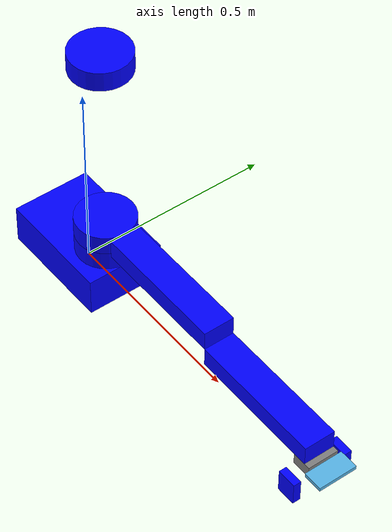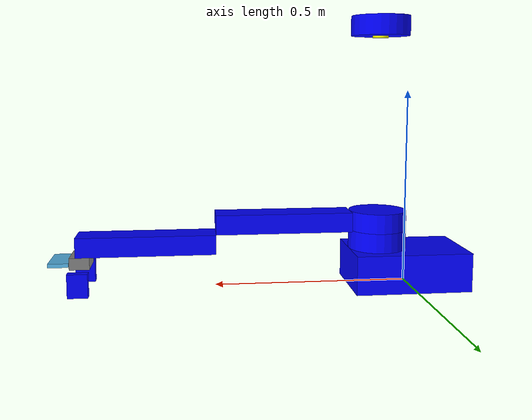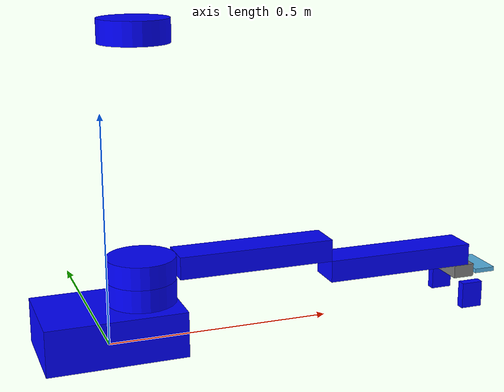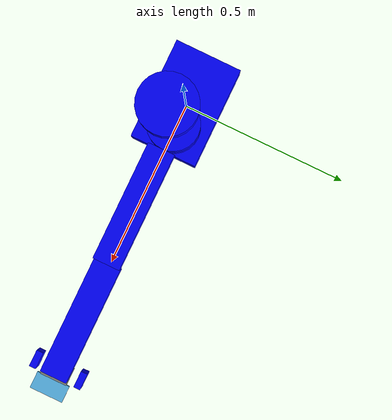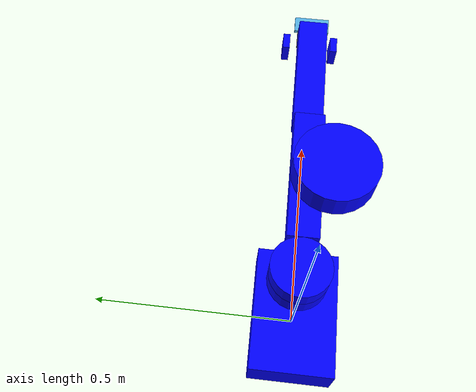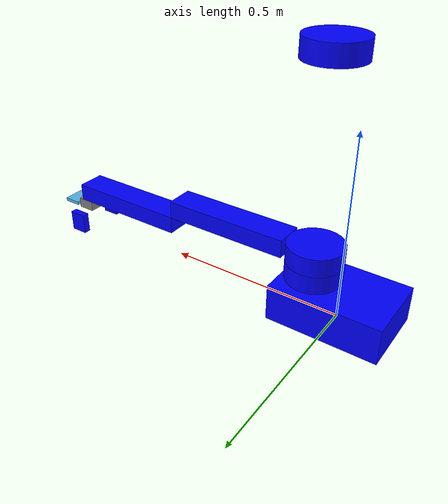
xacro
<?xml version="1.0"?>
<robot name="orion" xmlns:xacro="http://www.ros.org/wiki/xacro">

    <xacro:include filename="common_properties.xacro"/>
    <xacro:include filename="orion_manipulator_scara.xacro"/>
    <xacro:include filename="orion_manipulator_scara_gazebo.xacro"/>
    <xacro:include filename="sensors/camera.xacro"/>
    <xacro:include filename="sensors/imus.xacro"/>

    <xacro:imu_sensor prefix="arm1" parent="arm_1_link" xyz="0 0 0"/>
    <xacro:imu_sensor prefix="arm2" parent="arm_2_link" xyz="0 0 0"/>
    <xacro:imu_sensor prefix="gripper" parent="base_gripper_link" xyz="0 0 0"/>
    <xacro:include filename="sensors/distance_laser.xacro"/>

    <xacro:include filename="world_sensor_plugins.xacro"/>

</robot>

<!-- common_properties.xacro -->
<robot xmlns:xacro="http://www.ros.org/wiki/xacro">

    <material name="red">
        <color rgba="1 0 0 1"/>
    </material>

    <material name="white">
        <color rgba="1 1 1 1"/>
    </material>

    <material name="blue">
        <color rgba="0 0 1 1"/>
    </material>

    <material name="yellow">
        <color rgba="1 1 0 1"/>
    </material>

    <material name="grey">
        <color rgba="0.5 0.5 0.5 1"/>
    </material>

    <xacro:macro name="box_inertia" params="m x y z o_xyz o_rpy">
        <inertial>
            <mass value="${m}"/>
            <origin xyz="${o_xyz}" rpy="${o_rpy}"/>
            <inertia ixx="${(m/12) * (y*y + z*z)}" ixy="0" ixz="0"
                     iyy="${(m/12) * (x*x + z*z)}" iyz="0"
                     izz="${(m/12) * (x*x + y*y)}"/>
        </inertial>
    </xacro:macro>

    <xacro:macro name="cylinder_inertia" params="m r h o_xyz o_rpy">
        <inertial>
            <mass value="${m}"/>
            <origin xyz="${o_xyz}" rpy="${o_rpy}"/>
            <inertia ixx="${(m/12) * (3*r*r + h*h)}" ixy="0" ixz="0"
                     iyy="${(m/12) * (3*r*r + h*h)}" iyz="0"
                     izz="${(m/2) * (r*r)}"/>
        </inertial>
    </xacro:macro>

    <xacro:macro name="sphere_inertia" params="m r o_xyz o_rpy">
        <inertial>
            <mass value="${m}"/>
            <origin xyz="${o_xyz}" rpy="${o_rpy}"/>
            <inertia ixx="${(2.0/5.0) * m*r*r}" ixy="0" ixz="0"
                     iyy="${(2.0/5.0) * m*r*r}" iyz="0"
                     izz="${(2.0/5.0) * m*r*r}"/>
        </inertial>
    </xacro:macro>

</robot>

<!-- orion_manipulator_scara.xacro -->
<robot xmlns:xacro="http://www.ros.org/wiki/xacro">

    <xacro:property name="base_scara_length" value="0.3"/>
    <xacro:property name="base_scara_width" value ="0.2"/>
    <xacro:property name="base_scara_height" value="0.10"/>
    <xacro:property name="scara_support_radius" value="0.075"/>
    <xacro:property name="scara_support_length" value="0.05"/>
    <xacro:property name="arm_length" value="0.35"/>
    <xacro:property name="arm_width" value ="0.08"/>
    <xacro:property name="arm_height" value="0.05"/>
    <xacro:property name="base_gripper_length" value="0.05"/>
    <xacro:property name="base_gripper_width" value ="0.08"/>
    <xacro:property name="base_gripper_height" value="0.03"/>
    <xacro:property name="gripper_length" value="0.05"/>
    <xacro:property name="gripper_width" value ="0.02"/>
    <xacro:property name="gripper_height" value="0.06"/>

    <xacro:property name="base_scara_mass" value="3.0"/>
    <xacro:property name="scara_support_mass" value="10.0"/>
    <xacro:property name="arm_mass" value="1.0"/>
    <xacro:property name="base_gripper_mass" value="0.2"/>
    <xacro:property name="gripper_mass" value="0.1"/>

    <xacro:macro name="support_link" params="prefix z">
        <link name="${prefix}_scara_link">
            <visual>
                <geometry>
                    <cylinder radius="${scara_support_radius}" length="${scara_support_length}"/>
                </geometry>
                <origin xyz="0 0 ${z}" rpy="0 0 0"/>
                <material name="blue"/>
            </visual>
            <collision>
                <geometry>
                    <cylinder radius="${scara_support_radius}" length="${scara_support_length}"/>
                </geometry>
                <origin xyz="0 0 ${z}" rpy="0 0 0"/>
            </collision>
            <xacro:cylinder_inertia m="${scara_support_mass}" r="${scara_support_radius}" h="${scara_support_length}"
                                    o_xyz="0 0 ${z}" o_rpy="0 0 0"/>
        </link>
    </xacro:macro>

    <xacro:macro name="arm_link" params="prefix">
        <link name="arm_${prefix}_link">
            <visual>
                <geometry>
                    <box size="${arm_length} ${arm_width} ${arm_height}"/>
                </geometry>
                <origin xyz="0.175 0 0" rpy="0 0 0"/>
                <material name="blue"/>
            </visual>
            <collision>
                <geometry>
                    <box size="${arm_length} ${arm_width} ${arm_height}"/>
                </geometry>
                <origin xyz="0.175 0 0" rpy="0 0 0"/>
            </collision>
            <xacro:box_inertia m="${arm_mass}" x="${arm_length}" y="${arm_width}" z="${arm_height}"
                           o_xyz="0.175 0 0" o_rpy="0 0 0"/>
        </link>
    </xacro:macro>

    <xacro:macro name="gripper_link" params="prefix">
        <link name="${prefix}_gripper_link">
            <visual>
                <geometry>
                    <box size="${gripper_length} ${gripper_width} ${gripper_height}"/>
                </geometry>
                <origin xyz="0 0 0" rpy="0 0 0"/>
                <material name="blue"/>
            </visual>
            <collision>
                <geometry>
                    <box size="${gripper_length} ${gripper_width} ${gripper_height}"/>
                </geometry>
                <origin xyz="0 0 0" rpy="0 0 0"/>
            </collision>
            <xacro:box_inertia m="${gripper_mass}" x="${gripper_length}" y="${gripper_width}" z="${gripper_height}"
                           o_xyz="0 0 0" o_rpy="0 0 0"/>
        </link>
    </xacro:macro>

    <link name="base_scara_link">
        <visual>
            <geometry>
                <box size="${base_scara_length} ${base_scara_width} ${base_scara_height}"/>
            </geometry>
            <origin xyz="0 0 0.04" rpy="0 0 0"/>
            <material name="blue"/>
        </visual>
        <collision>
                <geometry>
                    <box size="${base_scara_length} ${base_scara_width} ${base_scara_height}"/>
                </geometry>
                <origin xyz="0 0 0.04" rpy="0 0 0"/>
            </collision>
            <xacro:box_inertia m="${base_scara_mass}" x="${base_scara_length}" y="${base_scara_width}" z="${base_scara_height}"
                           o_xyz="0 0 0.04" o_rpy="0 0 0"/>
    </link>

    <xacro:support_link prefix="first_support" z="0.025"/>
    <xacro:support_link prefix="second_support" z="0.025"/>
    <xacro:support_link prefix="movable" z="0"/>

    <xacro:arm_link prefix="1"/>
    <xacro:arm_link prefix="2"/>

    <link name="base_gripper_link">
        <visual>
            <geometry>
                <box size="${base_gripper_length} ${base_gripper_width} ${base_gripper_height}"/>
            </geometry>
            <origin xyz="0 0 0" rpy="0 0 0"/>
            <material name="grey"/>
        </visual>
        <collision>
                <geometry>
                    <box size="${base_gripper_length} ${base_gripper_width} ${base_gripper_height}"/>
                </geometry>
                <origin xyz="0 0 0" rpy="0 0 0"/>
            </collision>
            <xacro:box_inertia m="${base_gripper_mass}" x="${base_gripper_length}" y="${base_gripper_width}" z="${base_gripper_height}"
                           o_xyz="0 0 0" o_rpy="0 0 0"/>
    </link>

    <xacro:gripper_link prefix="left"/>
    <xacro:gripper_link prefix="right"/>

------------------------------------------------------------

    <joint name="scara_base_first_support_joint" type="revolute">
        <parent link="base_scara_link"/>
        <child link="first_support_scara_link"/>
        <origin xyz="0.075 0 0.09" rpy="0 0 0"/>
        <axis xyz="0 0 1"/>

        <limit lower="-3.14" upper="3.14" effort="500.0" velocity="1.0"/>
        <dynamics friction="20" damping="5" />

    </joint>

    <joint name="support_scara_joint" type="fixed">
        <parent link="first_support_scara_link"/>
        <child link="second_support_scara_link"/>
        <origin xyz="0 0 0.55" rpy="0 0 0"/>
    </joint>

    <joint name="first_support_movable_scara_joint" type="prismatic">
        <parent link="first_support_scara_link"/>
        <child link="movable_scara_link"/>
        <origin xyz="0 0 0.075" rpy="0 0 0"/>
        <axis xyz="0 0 1"/>
        <limit lower="0" upper="0.45" effort="1000.0" velocity="0.5"/>
        <dynamics friction="50" damping="30"/>
    </joint>

    <joint name="movable_scara_arm_1_joint" type="fixed">
        <parent link="movable_scara_link"/>
        <child link="arm_1_link"/>
        <origin xyz="0.075 0 0" rpy="0 0 0"/>
    </joint>

    <joint name="arm_joint" type="revolute">
        <parent link="arm_1_link"/>
        <child link="arm_2_link"/>
        <origin xyz="0.35 0 -0.05" rpy="0 0 0"/>
        <axis xyz="0 0 1"/>
        <limit lower="-3.14" upper="3.14" effort="500.0" velocity="3.0"/>
        <dynamics friction="15" damping="5" />
    </joint>

    <joint name="arm2_base_gripper_joint" type="revolute">
        <parent link="arm_2_link"/>
        <child link="base_gripper_link"/>
        <origin xyz="0.34 0 -0.040" rpy="0 0 0"/>
        <axis xyz="0 0 1"/>
        <limit lower="-3.14" upper="3.14" effort="80.0" velocity="1.0"/>
        <dynamics friction="5" damping="0.5" />
    </joint>

    <joint name="base_right_gripper_joint" type="prismatic">
        <parent link="base_gripper_link"/>
        <child link="right_gripper_link"/>
        <origin xyz="0 -0.07 -0.045" rpy="0 0 0"/>
        <axis xyz="0 1 0"/>
        <limit lower="0" upper="0.04" effort="100.0" velocity="1.0"/>
        <dynamics friction="2.5" damping="0.8"/>
    </joint>

    <joint name="base_left_gripper_joint" type="prismatic">
        <parent link="base_gripper_link"/>
        <child link="left_gripper_link"/>
        <origin xyz="0 0.07 -0.045" rpy="0 0 0"/>
        <axis xyz="0 1 0"/>
        <limit lower="-0.04" upper="0" effort="100.0" velocity="1.0"/>
        <dynamics friction="2.5" damping="0.8"/>
    </joint>

</robot>

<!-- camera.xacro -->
<robot xmlns:xacro="http://www.ros.org/wiki/xacro">

    <xacro:property name="camera_length" value="0.01"/>
    <xacro:property name="camera_width" value="0.1"/>
    <xacro:property name="camera_height" value="0.05"/>

    <xacro:macro name="camera_module" params="
        parent
        name:=camera
        length:=0.02
        width:=0.04
        height:=0.04
        mass:=0.1
        origin_xyz:='0.1 0 0'
        origin_rpy:='0 ${pi/2} 0'
        hfov:=1.3962634
        img_width:=640
        img_height:=480
        clip_near:=0.1
        clip_far:=15
        noise_stddev:=0.007
        update_rate:=20
        topic:=camera/image_raw
        info_topic:=camera/camera_info
    ">

        <link name="${name}_link">
            <visual>
                <geometry>
                    <box size="${length} ${width} ${height}"/>
                </geometry>
            </visual>
            <collision>
                <geometry>
                    <box size="${length} ${width} ${height}"/>
                </geometry>
            </collision>
            <xacro:box_inertia m="${mass}" x="${length}" y="${width}" z="${height}"
                               o_xyz="0 0 0" o_rpy="0 0 0"/>
        </link>

        <joint name="${parent}_${name}_joint" type="fixed">
            <parent link="${parent}_link"/>
            <child link="${name}_link"/>
            <origin xyz="${origin_xyz}" rpy="${origin_rpy}"/>
        </joint>

        <link name="${name}_link_optical"/>

        <joint name="${name}_optical_joint" type="fixed">
            <parent link="${name}_link"/>
            <child link="${name}_link_optical"/>
            <origin xyz="0 0 0" rpy="${-pi/2} 0 ${-pi/2}"/>
        </joint>

        <gazebo reference="${name}_link">
            <sensor name="${name}_sensor" type="camera">
                <camera>
                    <horizontal_fov>${hfov}</horizontal_fov>
                    <image>
                        <width>${img_width}</width>
                        <height>${img_height}</height>
                        <format>R8G8B8</format>
                    </image>
                    <clip>
                        <near>${clip_near}</near>
                        <far>${clip_far}</far>
                    </clip>
                    <noise>
                        <type>gaussian</type>
                        <mean>0.0</mean>
                        <stddev>${noise_stddev}</stddev>
                    </noise>
                    <distortion>
                        <k1>0.0</k1>
                        <k2>0.0</k2>
                        <k3>0.0</k3>
                        <p1>0.0</p1>
                        <p2>0.0</p2>
                        <center>0.0 0.0</center>
                    </distortion>
                    <optical_frame_id>${name}_link_optical</optical_frame_id>
                    <camera_info_topic>${info_topic}</camera_info_topic>
                </camera>
                <always_on>1</always_on>
                <update_rate>${update_rate}</update_rate>
                <visualize>true</visualize>
                <topic>${topic}</topic>
            </sensor>
        </gazebo>

    </xacro:macro>

    <xacro:camera_module parent="base_gripper"
                     length="0.01"
                     width="0.1"
                     height="0.05"
                     origin_xyz="${(base_gripper_length+0.05)/2.0} 0 0"
                     origin_rpy="0 ${pi/2} 0"/>

</robot>

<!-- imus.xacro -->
<robot xmlns:xacro="http://www.ros.org/wiki/xacro">

    <xacro:macro name="imu_sensor" params="prefix parent xyz">
        <link name="imu_${prefix}_link"/>
        <joint name="${prefix}_imu_joint" type="fixed">
            <parent link="${parent}"/>
            <child link="imu_${prefix}_link"/>
            <origin xyz="${xyz}" rpy="0 0 0"/>
        </joint>
        <gazebo reference="imu_${prefix}_link">
            <sensor name="imu_sensor" type="imu">
                <always_on>1</always_on>
                <update_rate>100</update_rate>
                <visualize>true</visualize>
                <topic>imu/${prefix}</topic>
                <imu>
                    <angular_velocity>
                        <x><noise type="gaussian"><mean>0.0</mean><stddev>2e-4</stddev></noise></x>
                        <y><noise type="gaussian"><mean>0.0</mean><stddev>2e-4</stddev></noise></y>
                        <z><noise type="gaussian"><mean>0.0</mean><stddev>2e-4</stddev></noise></z>
                    </angular_velocity>
                    <linear_acceleration>
                        <x><noise type="gaussian"><mean>0.0</mean><stddev>1.7e-2</stddev></noise></x>
                        <y><noise type="gaussian"><mean>0.0</mean><stddev>1.7e-2</stddev></noise></y>
                        <z><noise type="gaussian"><mean>0.0</mean><stddev>1.7e-2</stddev></noise></z>
                    </linear_acceleration>
                </imu>
            </sensor>
        </gazebo>
    </xacro:macro>

    <gazebo>
        <plugin filename="gz-sim-imu-system"
                name="gz::sim::systems::Imu"/>
    </gazebo>

</robot>

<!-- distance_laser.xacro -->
<robot xmlns:xacro="http://www.ros.org/wiki/xacro">

    <xacro:macro name="lidar_module" params="
        parent
        name:=distance_sensor
        radius:=0.02
        length:=0.01
        mass:=0.01
        origin_xyz:='0 0 0'
        origin_rpy:='0 0 0'
        samples:=360
        resolution:=1
        min_angle:=0
        max_angle:=0
        range_min:=0.001
        range_max:=1.0
        range_resolution:=0.01
        noise_stddev:=0.01
        update_rate:=10
        topic:=distance_scan
    ">

        <link name="${name}_frame">
            <visual>
                <geometry>
                    <cylinder radius="${radius}" length="${length}"/>
                </geometry>
                <material name="yellow"/>
                <origin xyz="0 0 0" rpy="0 ${pi/2} 0"/>
            </visual>
            <collision>
                <geometry>
                    <cylinder radius="${radius}" length="${length}"/>
                </geometry>
                <origin xyz="0 0 0" rpy="0 ${pi/2} 0"/>
            </collision>
            <xacro:cylinder_inertia m="${mass}" r="${radius}" h="${length}"
                                    o_xyz="0 0 0" o_rpy="0 0 0"/>
        </link>

        <joint name="${name}_support" type="fixed">
            <parent link="${parent}"/>
            <child link="${name}_frame"/>
            <origin xyz="${origin_xyz}" rpy="${origin_rpy}"/>
        </joint>

        <gazebo reference="${name}_frame">
            <sensor name="${name}" type="gpu_lidar">
                <pose>0 0 0 0 0 0</pose>
                <always_on>true</always_on>
                <visualize>true</visualize>
                <update_rate>${update_rate}</update_rate>
                <topic>${topic}</topic>
                <gz_frame_id>${name}_frame</gz_frame_id>
                <lidar>
                    <scan>
                        <horizontal>
                            <samples>${samples}</samples>
                            <resolution>${resolution}</resolution>
                            <min_angle>${min_angle}</min_angle>
                            <max_angle>${max_angle}</max_angle>
                        </horizontal>
                    </scan>
                    <range>
                        <min>${range_min}</min>
                        <max>${range_max}</max>
                        <resolution>${range_resolution}</resolution>
                    </range>
                    <noise>
                        <type>gaussian</type>
                        <mean>0.0</mean>
                        <stddev>${noise_stddev}</stddev>
                    </noise>
                </lidar>
            </sensor>
        </gazebo>

    </xacro:macro>

    <xacro:lidar_module parent="second_support_scara_link"
                    origin_xyz="0 0 0"
                    origin_rpy="0 ${pi/2} 0"
                    min_angle="0"
                    max_angle="0"/>
</robot>
